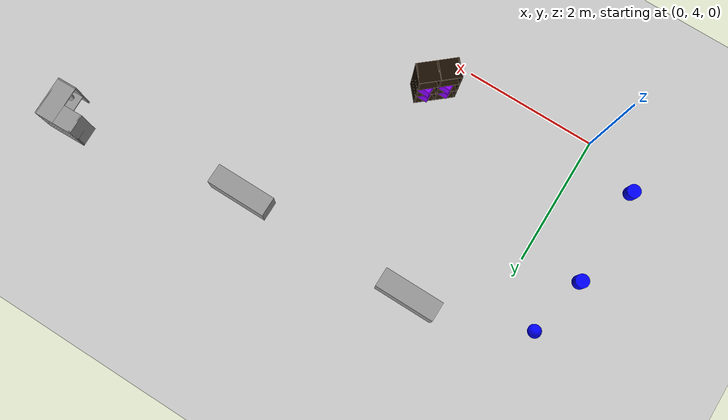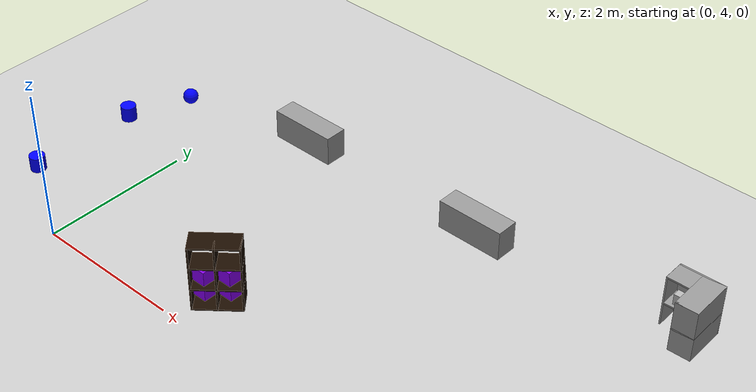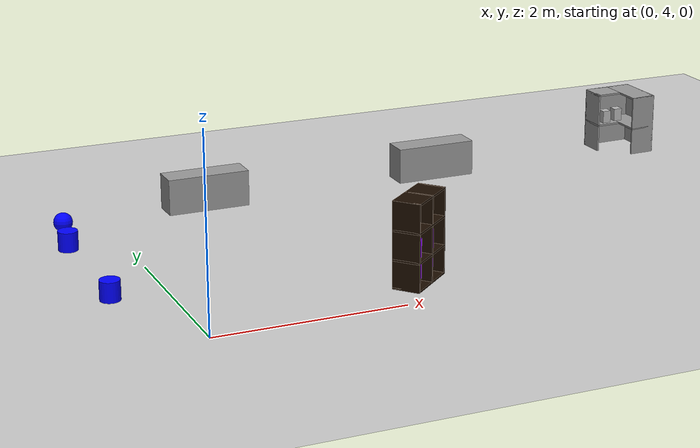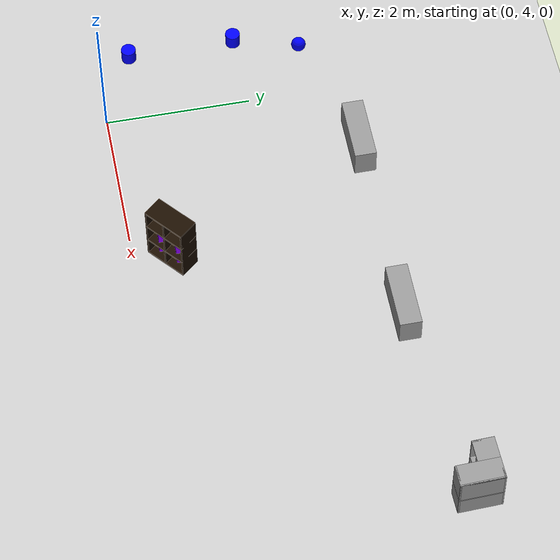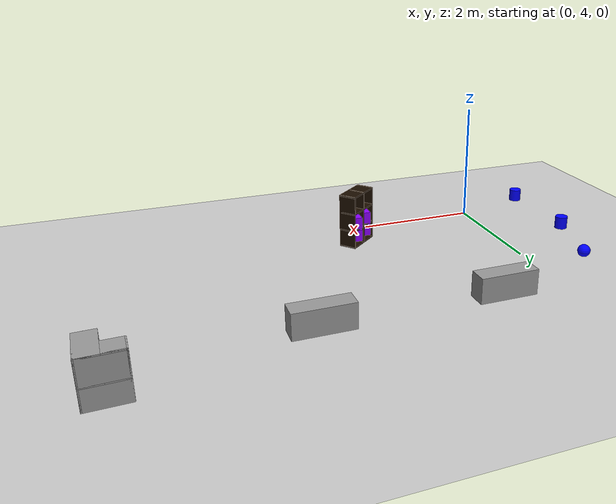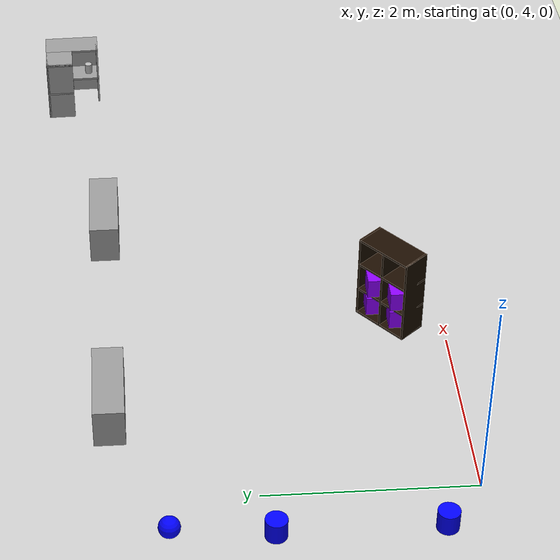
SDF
<sdf version="1.7">
 <world name="default">
  <model name="ground_plane">
   <static>1</static>
   <link name="link">
    <collision name="collision">
     <geometry><plane><normal>0 0 1</normal><size>100 100</size></plane></geometry>
     <surface>
      <contact><collide_bitmask>65535</collide_bitmask></contact>
      <friction><ode><mu>100</mu><mu2>50</mu2></ode></friction>
     </surface>
    </collision>
    <visual name="visual">
     <cast_shadows>0</cast_shadows>
     <geometry><plane><normal>0 0 1</normal><size>100 100</size></plane></geometry>
     <material>
      <script><uri>file://media/materials/scripts/gazebo.material</uri><name>Gazebo/Grey</name></script>
     </material>
    </visual>
   </link>
  </model>
  <model name="Wall_Cabinet_Coin_24x30W">
   <link name="Wall_10">
    <pose>0.286 -0.148 0.384 0 -0 0</pose>
    <inertial>
     <mass>2.1259</mass>
     <inertia><ixx>0.0158</ixx><iyy>0.1202</iyy><izz>0.1046</izz><ixy>0</ixy><ixz>0</ixz><iyz>0</iyz></inertia>
    </inertial>
    <collision name="Wall_10_Collision"><geometry><box><size>0.02 0.296 0.768</size></box></geometry></collision>
    <visual name="Wall_10_Visual">
     <geometry><box><size>0.02 0.296 0.768</size></box></geometry>
     <material>
      <script><uri>file://media/materials/scripts/gazebo.material</uri><name>Gazebo/Grey</name></script>
      <ambient>1 1 1 1</ambient>
     </material>
    </visual>
   </link>
   <joint name="10_16" type="fixed">
    <pose>0 0 -0.374 0 -0 0</pose>
    <parent>Wall_16</parent>
    <child>Wall_10</child>
    <axis><xyz>1 0 0</xyz><limit><lower>-1e+16</lower><upper>1e+16</upper></limit></axis>
   </joint>
   <joint name="10_14" type="fixed">
    <parent>Wall_14</parent>
    <child>Wall_10</child>
    <axis><xyz>1 0 0</xyz><limit><lower>-1e+16</lower><upper>1e+16</upper></limit></axis>
   </joint>
   <joint name="10_12" type="fixed">
    <pose>0 0 0.374 0 -0 0</pose>
    <parent>Wall_12</parent>
    <child>Wall_10</child>
    <axis><xyz>1 0 0</xyz><limit><lower>-1e+16</lower><upper>1e+16</upper></limit></axis>
   </joint>
   <joint name="10_29" type="fixed">
    <pose>0 -0.148 0 0 -0 0</pose>
    <parent>Wall_29</parent>
    <child>Wall_10</child>
    <axis><xyz>1 0 0</xyz><limit><lower>-1e+16</lower><upper>1e+16</upper></limit></axis>
   </joint>
   <link name="Wall_12">
    <pose>0.148 -0.148 0.758 0 -0 0</pose>
    <inertial>
     <mass>0.8802</mass>
     <inertia><ixx>0.0065</ixx><iyy>0.0139</iyy><izz>0.0074</izz><ixy>0</ixy><ixz>0</ixz><iyz>0</iyz></inertia>
    </inertial>
    <collision name="Wall_12_Collision"><geometry><box><size>0.296 0.296 0.02</size></box></geometry></collision>
    <visual name="Wall_12_Visual">
     <geometry><box><size>0.296 0.296 0.02</size></box></geometry>
     <material>
      <script><uri>file://media/materials/scripts/gazebo.material</uri><name>Gazebo/Grey</name></script>
      <ambient>1 1 1 1</ambient>
     </material>
    </visual>
   </link>
   <joint name="12_29" type="fixed">
    <pose>0 -0.148 0 0 -0 0</pose>
    <parent>Wall_29</parent>
    <child>Wall_12</child>
    <axis><xyz>0 0 1</xyz><limit><lower>-1e+16</lower><upper>1e+16</upper></limit></axis>
   </joint>
   <link name="Wall_14">
    <pose>0.148 -0.148 0.384 0 -0 0</pose>
    <inertial>
     <mass>0.8802</mass>
     <inertia><ixx>0.0065</ixx><iyy>0.0139</iyy><izz>0.0074</izz><ixy>0</ixy><ixz>0</ixz><iyz>0</iyz></inertia>
    </inertial>
    <collision name="Wall_14_Collision"><geometry><box><size>0.296 0.296 0.02</size></box></geometry></collision>
    <visual name="Wall_14_Visual">
     <geometry><box><size>0.296 0.296 0.02</size></box></geometry>
     <material>
      <script><uri>file://media/materials/scripts/gazebo.material</uri><name>Gazebo/Grey</name></script>
      <ambient>1 1 1 1</ambient>
     </material>
    </visual>
   </link>
   <joint name="14_29" type="fixed">
    <pose>0 -0.148 0 0 -0 0</pose>
    <parent>Wall_29</parent>
    <child>Wall_14</child>
    <axis><xyz>0 1 0</xyz><limit><lower>-1e+16</lower><upper>1e+16</upper></limit></axis>
   </joint>
   <link name="Wall_16">
    <pose>0.148 -0.148 0.01 0 -0 0</pose>
    <inertial>
     <mass>0.8802</mass>
     <inertia><ixx>0.0065</ixx><iyy>0.0139</iyy><izz>0.0074</izz><ixy>0</ixy><ixz>0</ixz><iyz>0</iyz></inertia>
    </inertial>
    <collision name="Wall_16_Collision"><geometry><box><size>0.296 0.296 0.02</size></box></geometry></collision>
    <visual name="Wall_16_Visual">
     <geometry><box><size>0.296 0.296 0.02</size></box></geometry>
     <material>
      <script><uri>file://media/materials/scripts/gazebo.material</uri><name>Gazebo/Grey</name></script>
      <ambient>1 1 1 1</ambient>
     </material>
    </visual>
   </link>
   <joint name="16_29" type="fixed">
    <pose>0 -0.148 0 0 -0 0</pose>
    <parent>Wall_29</parent>
    <child>Wall_16</child>
    <axis><xyz>0 1 0</xyz><limit><lower>-1e+16</lower><upper>1e+16</upper></limit></axis>
   </joint>
   <link name="Wall_18">
    <pose>-0.148 0 0.01 0 -0 0</pose>
    <inertial>
     <mass>1.6525</mass>
     <inertia><ixx>0.0491</ixx><iyy>0.0613</iyy><izz>0.0123</izz><ixy>0</ixy><ixz>0</ixz><iyz>0</iyz></inertia>
    </inertial>
    <collision name="Wall_18_Collision"><geometry><box><size>0.296 0.592 0.02</size></box></geometry></collision>
    <visual name="Wall_18_Visual">
     <geometry><box><size>0.296 0.592 0.02</size></box></geometry>
     <material>
      <script><uri>file://media/materials/scripts/gazebo.material</uri><name>Gazebo/Grey</name></script>
      <ambient>1 1 1 1</ambient>
     </material>
    </visual>
   </link>
   <joint name="18_16" type="fixed">
    <pose>0.148 -0.148 0 0 -0 0</pose>
    <parent>Wall_16</parent>
    <child>Wall_18</child>
    <axis><xyz>1 0 0</xyz><limit><lower>-1e+16</lower><upper>1e+16</upper></limit></axis>
   </joint>
   <joint name="18_29" type="fixed">
    <pose>0 -0.296 0 0 -0 0</pose>
    <parent>Wall_29</parent>
    <child>Wall_18</child>
    <axis><xyz>0 1 0</xyz><limit><lower>-1e+16</lower><upper>1e+16</upper></limit></axis>
   </joint>
   <joint name="18_27" type="fixed">
    <pose>-0.148 0 0 0 -0 0</pose>
    <parent>Wall_27</parent>
    <child>Wall_18</child>
    <axis><xyz>1 0 0</xyz><limit><lower>-1e+16</lower><upper>1e+16</upper></limit></axis>
   </joint>
   <joint name="18_30" type="fixed">
    <pose>0 0.296 0 0 -0 0</pose>
    <parent>Wall_30</parent>
    <child>Wall_18</child>
    <axis><xyz>0 1 0</xyz><limit><lower>-1e+16</lower><upper>1e+16</upper></limit></axis>
   </joint>
   <link name="Wall_20">
    <pose>-0.148 0 0.384 0 -0 0</pose>
    <inertial>
     <mass>1.6525</mass>
     <inertia><ixx>0.0491</ixx><iyy>0.0613</iyy><izz>0.0123</izz><ixy>0</ixy><ixz>0</ixz><iyz>0</iyz></inertia>
    </inertial>
    <collision name="Wall_20_Collision"><geometry><box><size>0.296 0.592 0.02</size></box></geometry></collision>
    <visual name="Wall_20_Visual">
     <geometry><box><size>0.296 0.592 0.02</size></box></geometry>
     <material>
      <script><uri>file://media/materials/scripts/gazebo.material</uri><name>Gazebo/Grey</name></script>
      <ambient>1 1 1 1</ambient>
     </material>
    </visual>
   </link>
   <joint name="20_14" type="fixed">
    <pose>0.148 -0.148 0 0 -0 0</pose>
    <parent>Wall_14</parent>
    <child>Wall_20</child>
    <axis><xyz>1 0 0</xyz><limit><lower>-1e+16</lower><upper>1e+16</upper></limit></axis>
   </joint>
   <joint name="20_29" type="fixed">
    <pose>0 -0.296 0 0 -0 0</pose>
    <parent>Wall_29</parent>
    <child>Wall_20</child>
    <axis><xyz>0 1 0</xyz><limit><lower>-1e+16</lower><upper>1e+16</upper></limit></axis>
   </joint>
   <joint name="20_27" type="fixed">
    <pose>-0.148 0 0 0 -0 0</pose>
    <parent>Wall_27</parent>
    <child>Wall_20</child>
    <axis><xyz>1 0 0</xyz><limit><lower>-1e+16</lower><upper>1e+16</upper></limit></axis>
   </joint>
   <joint name="20_30" type="fixed">
    <pose>0 0.296 0 0 -0 0</pose>
    <parent>Wall_30</parent>
    <child>Wall_20</child>
    <axis><xyz>0 1 0</xyz><limit><lower>-1e+16</lower><upper>1e+16</upper></limit></axis>
   </joint>
   <link name="Wall_22">
    <pose>-0.148 0 0.758 0 -0 0</pose>
    <inertial>
     <mass>1.6525</mass>
     <inertia><ixx>0.0491</ixx><iyy>0.0613</iyy><izz>0.0123</izz><ixy>0</ixy><ixz>0</ixz><iyz>0</iyz></inertia>
    </inertial>
    <collision name="Wall_22_Collision"><geometry><box><size>0.296 0.592 0.02</size></box></geometry></collision>
    <visual name="Wall_22_Visual">
     <geometry><box><size>0.296 0.592 0.02</size></box></geometry>
     <material>
      <script><uri>file://media/materials/scripts/gazebo.material</uri><name>Gazebo/Grey</name></script>
      <ambient>1 1 1 1</ambient>
     </material>
    </visual>
   </link>
   <joint name="22_12" type="fixed">
    <pose>0.148 -0.148 0 0 -0 0</pose>
    <parent>Wall_12</parent>
    <child>Wall_22</child>
    <axis><xyz>1 0 0</xyz><limit><lower>-1e+16</lower><upper>1e+16</upper></limit></axis>
   </joint>
   <joint name="22_29" type="fixed">
    <pose>0 -0.296 0 0 -0 0</pose>
    <parent>Wall_29</parent>
    <child>Wall_22</child>
    <axis><xyz>0 1 0</xyz><limit><lower>-1e+16</lower><upper>1e+16</upper></limit></axis>
   </joint>
   <joint name="22_27" type="fixed">
    <pose>-0.148 0 0 0 -0 0</pose>
    <parent>Wall_27</parent>
    <child>Wall_22</child>
    <axis><xyz>1 0 0</xyz><limit><lower>-1e+16</lower><upper>1e+16</upper></limit></axis>
   </joint>
   <joint name="22_30" type="fixed">
    <pose>0 0.296 0 0 -0 0</pose>
    <parent>Wall_30</parent>
    <child>Wall_22</child>
    <axis><xyz>0 1 0</xyz><limit><lower>-1e+16</lower><upper>1e+16</upper></limit></axis>
   </joint>
   <link name="Wall_27">
    <pose>-0.286 0 0.384 0 -0 0</pose>
    <inertial>
     <mass>4.2589</mass>
     <inertia><ixx>0.1266</ixx><iyy>0.3358</iyy><izz>0.2095</izz><ixy>0</ixy><ixz>0</ixz><iyz>0</iyz></inertia>
    </inertial>
    <collision name="Wall_27_Collision"><geometry><box><size>0.02 0.592 0.768</size></box></geometry></collision>
    <visual name="Wall_27_Visual">
     <geometry><box><size>0.02 0.592 0.768</size></box></geometry>
     <material>
      <script><uri>file://media/materials/scripts/gazebo.material</uri><name>Gazebo/Grey</name></script>
      <ambient>1 1 1 1</ambient>
     </material>
    </visual>
   </link>
   <joint name="27_30" type="fixed">
    <pose>0 0.296 0 0 -0 0</pose>
    <parent>Wall_30</parent>
    <child>Wall_27</child>
    <axis><xyz>0 1 0</xyz><limit><lower>-1e+16</lower><upper>1e+16</upper></limit></axis>
   </joint>
   <link name="Wall_29">
    <pose>0 -0.286 0.384 0 -0 0</pose>
    <inertial>
     <mass>4.3176</mass>
     <inertia><ixx>0.134</ixx><iyy>0.2091</iyy><izz>0.3428</izz><ixy>0</ixy><ixz>0</ixz><iyz>0</iyz></inertia>
    </inertial>
    <collision name="Wall_29_Collision"><geometry><box><size>0.592 0.02 0.768</size></box></geometry></collision>
    <visual name="Wall_29_Visual">
     <geometry><box><size>0.592 0.02 0.768</size></box></geometry>
     <material>
      <script><uri>file://media/materials/scripts/gazebo.material</uri><name>Gazebo/Grey</name></script>
      <ambient>1 1 1 1</ambient>
     </material>
    </visual>
   </link>
   <link name="Wall_30">
    <pose>-0.148 0.286 0.384 0 -0 0</pose>
    <inertial>
     <mass>2.1093</mass>
     <inertia><ixx>0.1021</ixx><iyy>0.0157</iyy><izz>0.1177</izz><ixy>0</ixy><ixz>0</ixz><iyz>0</iyz></inertia>
    </inertial>
    <collision name="Wall_30_Collision"><geometry><box><size>0.296 0.02 0.768</size></box></geometry></collision>
    <visual name="Wall_30_Visual">
     <geometry><box><size>0.296 0.02 0.768</size></box></geometry>
     <material>
      <script><uri>file://media/materials/scripts/gazebo.material</uri><name>Gazebo/Grey</name></script>
      <ambient>1 1 1 1</ambient>
     </material>
    </visual>
   </link>
   <static>1</static>
   <pose>6.53795 7.67148 -0.076235 0 0 -3.11243</pose>
  </model>
  <model name="tea_box">
   <link name="link">
    <pose>0 0 0.075 0 -0 0</pose>
    <visual name="visual">
     <geometry><box><size>0.1 0.1 0.15</size></box></geometry>
     <material>
      <script>
       <uri>model://tea_box/materials/scripts</uri>
       <uri>model://tea_box/materials/textures</uri>
       <name>tea_pat</name>
      </script>
     </material>
    </visual>
    <collision name="collision"><geometry><box><size>0.1 0.1 0.15</size></box></geometry></collision>
   </link>
   <static>1</static>
   <pose>6.3937 7.76277 0.31356 0 -0 0</pose>
  </model>
  <model name="tea_box_clone">
   <link name="link">
    <pose>0 0 0.075 0 -0 0</pose>
    <visual name="visual">
     <geometry><box><size>0.1 0.1 0.15</size></box></geometry>
     <material>
      <script>
       <uri>model://tea_box/materials/scripts</uri>
       <uri>model://tea_box/materials/textures</uri>
       <name>tea_pat</name>
      </script>
     </material>
    </visual>
    <collision name="collision"><geometry><box><size>0.1 0.1 0.15</size></box></geometry></collision>
   </link>
   <static>1</static>
   <pose>6.56471 7.79411 0.314783 0 -0 0</pose>
  </model>
  <model name="coffee_box">
   <link name="link_0">
    <visual name="visual">
     <pose>0 0 0.06 0 -0 0</pose>
     <geometry><cylinder><radius>0.04</radius><length>0.12</length></cylinder></geometry>
     <material>
      <script>
       <uri>model://coffee_box/materials/scripts</uri>
       <uri>model://coffee_box/materials/textures</uri>
       <name>coffee_pat</name>
      </script>
     </material>
    </visual>
    <collision name="collision">
     <geometry><cylinder><radius>0.04</radius><length>0.12</length></cylinder></geometry>
    </collision>
   </link>
   <static>1</static>
   <pose>6.67443 7.49279 0.308834 0 -0 0</pose>
  </model>
  <model name="cylinder_b">
   <link name="link_0">
    <pose>0 0 0.1 0 -0 0</pose>
    <inertial>
     <mass>1</mass>
     <inertia><ixx>0.145833</ixx><ixy>0</ixy><ixz>0</ixz><iyy>0.145833</iyy><iyz>0</iyz><izz>0.125</izz></inertia>
    </inertial>
    <visual name="visual">
     <geometry><cylinder><radius>0.1</radius><length>0.2</length></cylinder></geometry>
     <material>
      <lighting>1</lighting>
      <script><uri>file://media/materials/scripts/gazebo.material</uri><name>Gazebo/Grey</name></script>
      <ambient>0 0 1 1</ambient>
      <diffuse>0 0 1 1</diffuse>
      <specular>0 0 0 1</specular>
      <emissive>0 0 0 1</emissive>
      <shader type="vertex"><normal_map>__default__</normal_map></shader>
     </material>
    </visual>
    <collision name="collision">
     <geometry><cylinder><radius>0.1</radius><length>0.2</length></cylinder></geometry>
     <surface>
      <friction>
       <ode><mu>1</mu><mu2>1</mu2><fdir1>0 0 0</fdir1><slip1>0</slip1><slip2>0</slip2></ode>
       <torsional>
        <coefficient>1</coefficient>
        <patch_radius>0</patch_radius>
        <surface_radius>0</surface_radius>
        <use_patch_radius>1</use_patch_radius>
        <ode><slip>0</slip></ode>
       </torsional>
      </friction>
      <bounce><restitution_coefficient>0</restitution_coefficient><threshold>1e+06</threshold></bounce>
      <contact>
       <collide_without_contact>0</collide_without_contact>
       <collide_without_contact_bitmask>1</collide_without_contact_bitmask>
       <collide_bitmask>1</collide_bitmask>
       <ode>
        <soft_cfm>0</soft_cfm>
        <soft_erp>0.2</soft_erp>
        <kp>1e+13</kp>
        <kd>1</kd>
        <max_vel>0.01</max_vel>
        <min_depth>0</min_depth>
       </ode>
       <bullet>
        <split_impulse>1</split_impulse>
        <split_impulse_penetration_threshold>-0.01</split_impulse_penetration_threshold>
        <soft_cfm>0</soft_cfm>
        <soft_erp>0.2</soft_erp>
        <kp>1e+13</kp>
        <kd>1</kd>
       </bullet>
      </contact>
     </surface>
    </collision>
   </link>
   <static>1</static>
   <pose>-0.792536 4.45575 0.336104 0 -0 0</pose>
  </model>
  <model name="cylinder_b_0">
   <link name="link_0">
    <pose>0 0 0.1 0 -0 0</pose>
    <inertial>
     <mass>1</mass>
     <inertia><ixx>0.145833</ixx><ixy>0</ixy><ixz>0</ixz><iyy>0.145833</iyy><iyz>0</iyz><izz>0.125</izz></inertia>
    </inertial>
    <visual name="visual">
     <geometry><cylinder><radius>0.1</radius><length>0.2</length></cylinder></geometry>
     <material>
      <lighting>1</lighting>
      <script><uri>file://media/materials/scripts/gazebo.material</uri><name>Gazebo/Grey</name></script>
      <ambient>0 0 1 1</ambient>
      <diffuse>0 0 1 1</diffuse>
      <specular>0 0 0 1</specular>
      <emissive>0 0 0 1</emissive>
      <shader type="vertex"><normal_map>__default__</normal_map></shader>
     </material>
    </visual>
    <collision name="collision">
     <geometry><cylinder><radius>0.1</radius><length>0.2</length></cylinder></geometry>
     <surface>
      <friction>
       <ode><mu>1</mu><mu2>1</mu2><fdir1>0 0 0</fdir1><slip1>0</slip1><slip2>0</slip2></ode>
       <torsional>
        <coefficient>1</coefficient>
        <patch_radius>0</patch_radius>
        <surface_radius>0</surface_radius>
        <use_patch_radius>1</use_patch_radius>
        <ode><slip>0</slip></ode>
       </torsional>
      </friction>
      <bounce><restitution_coefficient>0</restitution_coefficient><threshold>1e+06</threshold></bounce>
      <contact>
       <collide_without_contact>0</collide_without_contact>
       <collide_without_contact_bitmask>1</collide_without_contact_bitmask>
       <collide_bitmask>1</collide_bitmask>
       <ode>
        <soft_cfm>0</soft_cfm>
        <soft_erp>0.2</soft_erp>
        <kp>1e+13</kp>
        <kd>1</kd>
        <max_vel>0.01</max_vel>
        <min_depth>0</min_depth>
       </ode>
       <bullet>
        <split_impulse>1</split_impulse>
        <split_impulse_penetration_threshold>-0.01</split_impulse_penetration_threshold>
        <soft_cfm>0</soft_cfm>
        <soft_erp>0.2</soft_erp>
        <kp>1e+13</kp>
        <kd>1</kd>
       </bullet>
      </contact>
     </surface>
    </collision>
   </link>
   <static>1</static>
   <pose>-0.793247 5.92319 0.334022 0 -0 0</pose>
  </model>
  <model name="sphere_b">
   <link name="link_1">
    <pose>0 0 0.1 0 -0 0</pose>
    <inertial>
     <mass>1</mass>
     <inertia><ixx>0.1</ixx><ixy>0</ixy><ixz>0</ixz><iyy>0.1</iyy><iyz>0</iyz><izz>0.1</izz></inertia>
    </inertial>
    <visual name="visual">
     <geometry><sphere><radius>0.1</radius></sphere></geometry>
     <material>
      <lighting>1</lighting>
      <script><uri>file://media/materials/scripts/gazebo.material</uri><name>Gazebo/Grey</name></script>
      <ambient>0 0 1 1</ambient>
      <diffuse>0 0 1 1</diffuse>
      <specular>0 0 0 1</specular>
      <emissive>0 0 0 1</emissive>
      <shader type="vertex"><normal_map>__default__</normal_map></shader>
     </material>
    </visual>
    <collision name="collision">
     <geometry><sphere><radius>0.1</radius></sphere></geometry>
     <surface>
      <friction>
       <ode><mu>1</mu><mu2>1</mu2><fdir1>0 0 0</fdir1><slip1>0</slip1><slip2>0</slip2></ode>
       <torsional>
        <coefficient>1</coefficient>
        <patch_radius>0</patch_radius>
        <surface_radius>0</surface_radius>
        <use_patch_radius>1</use_patch_radius>
        <ode><slip>0</slip></ode>
       </torsional>
      </friction>
      <bounce><restitution_coefficient>0</restitution_coefficient><threshold>1e+06</threshold></bounce>
      <contact>
       <collide_without_contact>0</collide_without_contact>
       <collide_without_contact_bitmask>1</collide_without_contact_bitmask>
       <collide_bitmask>1</collide_bitmask>
       <ode>
        <soft_cfm>0</soft_cfm>
        <soft_erp>0.2</soft_erp>
        <kp>1e+13</kp>
        <kd>1</kd>
        <max_vel>0.01</max_vel>
        <min_depth>0</min_depth>
       </ode>
       <bullet>
        <split_impulse>1</split_impulse>
        <split_impulse_penetration_threshold>-0.01</split_impulse_penetration_threshold>
        <soft_cfm>0</soft_cfm>
        <soft_erp>0.2</soft_erp>
        <kp>1e+13</kp>
        <kd>1</kd>
       </bullet>
      </contact>
     </surface>
    </collision>
   </link>
   <static>1</static>
   <pose>-0.612109 6.82404 0.208521 0 -0 0</pose>
  </model>
  <model name="6_Cube_StorageE">
   <link name="Wall_0">
    <pose>0 0 0.01 0 -0 0</pose>
    <inertial>
     <mass>1.6201</mass>
     <inertia><ixx>0.0119</ixx><iyy>0.0631</iyy><izz>0.0513</izz><ixy>0</ixy><ixz>0</ixz><iyz>0</iyz></inertia>
    </inertial>
    <collision name="Wall_0_Collision"><geometry><box><size>0.616 0.296 0.02</size></box></geometry></collision>
    <visual name="Wall_0_Visual">
     <geometry><box><size>0.616 0.296 0.02</size></box></geometry>
     <material>
      <script><uri>file://media/materials/scripts/gazebo.material</uri><name>Gazebo/Grey</name></script>
      <ambient>0.105882 0.0509804 0 1</ambient>
     </material>
    </visual>
   </link>
   <joint name="0_2" type="fixed">
    <pose>-0.308 0 0 0 -0 0</pose>
    <parent>Wall_2</parent>
    <child>Wall_0</child>
    <axis><xyz>1 0 0</xyz><limit><lower>-1e+16</lower><upper>1e+16</upper></limit></axis>
   </joint>
   <joint name="0_12" type="fixed">
    <parent>Wall_12</parent>
    <child>Wall_0</child>
    <axis><xyz>0 0 1</xyz><limit><lower>-1e+16</lower><upper>1e+16</upper></limit></axis>
   </joint>
   <joint name="0_4" type="fixed">
    <pose>0.308 0 0 0 -0 0</pose>
    <parent>Wall_4</parent>
    <child>Wall_0</child>
    <axis><xyz>1 0 0</xyz><limit><lower>-1e+16</lower><upper>1e+16</upper></limit></axis>
   </joint>
   <link name="Wall_10">
    <pose>0 0 0.61 0 -0 0</pose>
    <inertial>
     <mass>1.6201</mass>
     <inertia><ixx>0.0119</ixx><iyy>0.0631</iyy><izz>0.0513</izz><ixy>0</ixy><ixz>0</ixz><iyz>0</iyz></inertia>
    </inertial>
    <collision name="Wall_10_Collision"><geometry><box><size>0.616 0.296 0.02</size></box></geometry></collision>
    <visual name="Wall_10_Visual">
     <geometry><box><size>0.616 0.296 0.02</size></box></geometry>
     <material>
      <script><uri>file://media/materials/scripts/gazebo.material</uri><name>Gazebo/Grey</name></script>
      <ambient>0.105882 0.0509804 0 1</ambient>
     </material>
    </visual>
   </link>
   <joint name="10_2" type="fixed">
    <pose>-0.308 0 0 0 -0 0</pose>
    <parent>Wall_2</parent>
    <child>Wall_10</child>
    <axis><xyz>1 0 0</xyz><limit><lower>-1e+16</lower><upper>1e+16</upper></limit></axis>
   </joint>
   <joint name="10_12" type="fixed">
    <parent>Wall_12</parent>
    <child>Wall_10</child>
    <axis><xyz>0 0 1</xyz><limit><lower>-1e+16</lower><upper>1e+16</upper></limit></axis>
   </joint>
   <joint name="10_4" type="fixed">
    <pose>0.308 0 0 0 -0 0</pose>
    <parent>Wall_4</parent>
    <child>Wall_10</child>
    <axis><xyz>1 0 0</xyz><limit><lower>-1e+16</lower><upper>1e+16</upper></limit></axis>
   </joint>
   <link name="Wall_12">
    <pose>0 0 0.4575 0 -0 0</pose>
    <inertial>
     <mass>2.4065</mass>
     <inertia><ixx>0.0177</ixx><iyy>0.1855</iyy><izz>0.168</izz><ixy>0</ixy><ixz>0</ixz><iyz>0</iyz></inertia>
    </inertial>
    <collision name="Wall_12_Collision"><geometry><box><size>0.02 0.296 0.915</size></box></geometry></collision>
    <visual name="Wall_12_Visual">
     <geometry><box><size>0.02 0.296 0.915</size></box></geometry>
     <material>
      <script><uri>file://media/materials/scripts/gazebo.material</uri><name>Gazebo/Grey</name></script>
      <ambient>0.105882 0.0509804 0 1</ambient>
     </material>
    </visual>
   </link>
   <link name="Wall_2">
    <pose>-0.298 0 0.4575 0 -0 0</pose>
    <inertial>
     <mass>2.4065</mass>
     <inertia><ixx>0.0177</ixx><iyy>0.1855</iyy><izz>0.168</izz><ixy>0</ixy><ixz>0</ixz><iyz>0</iyz></inertia>
    </inertial>
    <collision name="Wall_2_Collision"><geometry><box><size>0.02 0.296 0.915</size></box></geometry></collision>
    <visual name="Wall_2_Visual">
     <geometry><box><size>0.02 0.296 0.915</size></box></geometry>
     <material>
      <script><uri>file://media/materials/scripts/gazebo.material</uri><name>Gazebo/Grey</name></script>
      <ambient>0.105882 0.0509804 0 1</ambient>
     </material>
    </visual>
   </link>
   <link name="Wall_4">
    <pose>0.298 0 0.4575 0 -0 0</pose>
    <inertial>
     <mass>2.4065</mass>
     <inertia><ixx>0.0177</ixx><iyy>0.1855</iyy><izz>0.168</izz><ixy>0</ixy><ixz>0</ixz><iyz>0</iyz></inertia>
    </inertial>
    <collision name="Wall_4_Collision"><geometry><box><size>0.02 0.296 0.915</size></box></geometry></collision>
    <visual name="Wall_4_Visual">
     <geometry><box><size>0.02 0.296 0.915</size></box></geometry>
     <material>
      <script><uri>file://media/materials/scripts/gazebo.material</uri><name>Gazebo/Grey</name></script>
      <ambient>0.105882 0.0509804 0 1</ambient>
     </material>
    </visual>
   </link>
   <link name="Wall_6">
    <pose>0 0 0.905 0 -0 0</pose>
    <inertial>
     <mass>1.6201</mass>
     <inertia><ixx>0.0119</ixx><iyy>0.0631</iyy><izz>0.0513</izz><ixy>0</ixy><ixz>0</ixz><iyz>0</iyz></inertia>
    </inertial>
    <collision name="Wall_6_Collision"><geometry><box><size>0.616 0.296 0.02</size></box></geometry></collision>
    <visual name="Wall_6_Visual">
     <geometry><box><size>0.616 0.296 0.02</size></box></geometry>
     <material>
      <script><uri>file://media/materials/scripts/gazebo.material</uri><name>Gazebo/Grey</name></script>
      <ambient>0.105882 0.0509804 0 1</ambient>
     </material>
    </visual>
   </link>
   <joint name="6_2" type="fixed">
    <pose>-0.308 0 0 0 -0 0</pose>
    <parent>Wall_2</parent>
    <child>Wall_6</child>
    <axis><xyz>2 0 0</xyz><limit><lower>-1e+16</lower><upper>1e+16</upper></limit></axis>
   </joint>
   <joint name="6_12" type="fixed">
    <parent>Wall_12</parent>
    <child>Wall_6</child>
    <axis><xyz>0 0 1</xyz><limit><lower>-1e+16</lower><upper>1e+16</upper></limit></axis>
   </joint>
   <joint name="6_4" type="fixed">
    <pose>0.308 0 0 0 -0 0</pose>
    <parent>Wall_4</parent>
    <child>Wall_6</child>
    <axis><xyz>1 0 0</xyz><limit><lower>-1e+16</lower><upper>1e+16</upper></limit></axis>
   </joint>
   <link name="Wall_8">
    <pose>0 0 0.305 0 -0 0</pose>
    <inertial>
     <mass>1.6201</mass>
     <inertia><ixx>0.0119</ixx><iyy>0.0631</iyy><izz>0.0513</izz><ixy>0</ixy><ixz>0</ixz><iyz>0</iyz></inertia>
    </inertial>
    <collision name="Wall_8_Collision"><geometry><box><size>0.616 0.296 0.02</size></box></geometry></collision>
    <visual name="Wall_8_Visual">
     <geometry><box><size>0.616 0.296 0.02</size></box></geometry>
     <material>
      <script><uri>file://media/materials/scripts/gazebo.material</uri><name>Gazebo/Grey</name></script>
      <ambient>0.105882 0.0509804 0 1</ambient>
     </material>
    </visual>
   </link>
   <joint name="8_2" type="fixed">
    <pose>-0.308 0 0 0 -0 0</pose>
    <parent>Wall_2</parent>
    <child>Wall_8</child>
    <axis><xyz>1 0 0</xyz><limit><lower>-1e+16</lower><upper>1e+16</upper></limit></axis>
   </joint>
   <joint name="8_12" type="fixed">
    <parent>Wall_12</parent>
    <child>Wall_8</child>
    <axis><xyz>0 0 1</xyz><limit><lower>-1e+16</lower><upper>1e+16</upper></limit></axis>
   </joint>
   <joint name="8_4" type="fixed">
    <pose>0.308 0 0 0 -0 0</pose>
    <parent>Wall_4</parent>
    <child>Wall_8</child>
    <axis><xyz>1 0 0</xyz><limit><lower>-1e+16</lower><upper>1e+16</upper></limit></axis>
   </joint>
   <static>1</static>
   <pose>2.36263 4.52683 -0 0 -0 0.709562</pose>
  </model>
  <model name="cube_vb">
   <link name="link_2">
    <pose>0 0 0.1 0 -0 0</pose>
    <inertial>
     <mass>1</mass>
     <inertia>
      <ixx>0.166667</ixx>
      <ixy>0</ixy>
      <ixz>0</ixz>
      <iyy>0.166667</iyy>
      <iyz>0</iyz>
      <izz>0.166667</izz>
     </inertia>
    </inertial>
    <visual name="visual">
     <geometry><box><size>0.2 0.2 0.2</size></box></geometry>
     <material>
      <lighting>1</lighting>
      <script><uri>file://media/materials/scripts/gazebo.material</uri><name>Gazebo/Grey</name></script>
      <ambient>0.549 0 1 1</ambient>
      <diffuse>0.549 0 1 1</diffuse>
      <specular>0 0 0 1</specular>
      <emissive>0 0 0 1</emissive>
      <shader type="vertex"><normal_map>__default__</normal_map></shader>
     </material>
    </visual>
    <collision name="collision">
     <geometry><box><size>0.2 0.2 0.2</size></box></geometry>
     <surface>
      <friction>
       <ode><mu>1</mu><mu2>1</mu2><fdir1>0 0 0</fdir1><slip1>0</slip1><slip2>0</slip2></ode>
       <torsional>
        <coefficient>1</coefficient>
        <patch_radius>0</patch_radius>
        <surface_radius>0</surface_radius>
        <use_patch_radius>1</use_patch_radius>
        <ode><slip>0</slip></ode>
       </torsional>
      </friction>
      <bounce><restitution_coefficient>0</restitution_coefficient><threshold>1e+06</threshold></bounce>
      <contact>
       <collide_without_contact>0</collide_without_contact>
       <collide_without_contact_bitmask>1</collide_without_contact_bitmask>
       <collide_bitmask>1</collide_bitmask>
       <ode>
        <soft_cfm>0</soft_cfm>
        <soft_erp>0.2</soft_erp>
        <kp>1e+13</kp>
        <kd>1</kd>
        <max_vel>0.01</max_vel>
        <min_depth>0</min_depth>
       </ode>
       <bullet>
        <split_impulse>1</split_impulse>
        <split_impulse_penetration_threshold>-0.01</split_impulse_penetration_threshold>
        <soft_cfm>0</soft_cfm>
        <soft_erp>0.2</soft_erp>
        <kp>1e+13</kp>
        <kd>1</kd>
       </bullet>
      </contact>
     </surface>
    </collision>
   </link>
   <static>1</static>
   <pose>2.21691 4.46057 0.312646 0 -0 0</pose>
  </model>
  <model name="cube_vb_clone">
   <link name="link_2">
    <pose>0 0 0.1 0 -0 0</pose>
    <inertial>
     <mass>1</mass>
     <inertia>
      <ixx>0.166667</ixx>
      <ixy>0</ixy>
      <ixz>0</ixz>
      <iyy>0.166667</iyy>
      <iyz>0</iyz>
      <izz>0.166667</izz>
     </inertia>
    </inertial>
    <visual name="visual">
     <geometry><box><size>0.2 0.2 0.2</size></box></geometry>
     <material>
      <lighting>1</lighting>
      <script><uri>file://media/materials/scripts/gazebo.material</uri><name>Gazebo/Grey</name></script>
      <ambient>0.549 0 1 1</ambient>
      <diffuse>0.549 0 1 1</diffuse>
      <specular>0 0 0 1</specular>
      <emissive>0 0 0 1</emissive>
      <shader type="vertex"><normal_map>__default__</normal_map></shader>
     </material>
    </visual>
    <collision name="collision">
     <geometry><box><size>0.2 0.2 0.2</size></box></geometry>
     <surface>
      <friction>
       <ode><mu>1</mu><mu2>1</mu2><fdir1>0 0 0</fdir1><slip1>0</slip1><slip2>0</slip2></ode>
       <torsional>
        <coefficient>1</coefficient>
        <patch_radius>0</patch_radius>
        <surface_radius>0</surface_radius>
        <use_patch_radius>1</use_patch_radius>
        <ode><slip>0</slip></ode>
       </torsional>
      </friction>
      <bounce><restitution_coefficient>0</restitution_coefficient><threshold>1e+06</threshold></bounce>
      <contact>
       <collide_without_contact>0</collide_without_contact>
       <collide_without_contact_bitmask>1</collide_without_contact_bitmask>
       <collide_bitmask>1</collide_bitmask>
       <ode>
        <soft_cfm>0</soft_cfm>
        <soft_erp>0.2</soft_erp>
        <kp>1e+13</kp>
        <kd>1</kd>
        <max_vel>0.01</max_vel>
        <min_depth>0</min_depth>
       </ode>
       <bullet>
        <split_impulse>1</split_impulse>
        <split_impulse_penetration_threshold>-0.01</split_impulse_penetration_threshold>
        <soft_cfm>0</soft_cfm>
        <soft_erp>0.2</soft_erp>
        <kp>1e+13</kp>
        <kd>1</kd>
       </bullet>
      </contact>
     </surface>
    </collision>
   </link>
   <static>1</static>
   <pose>2.43782 4.65523 0.313495 0 -0 0</pose>
  </model>
  <model name="cube_vb_clone_clone">
   <link name="link_2">
    <pose>0 0 0.1 0 -0 0</pose>
    <inertial>
     <mass>1</mass>
     <inertia>
      <ixx>0.166667</ixx>
      <ixy>0</ixy>
      <ixz>0</ixz>
      <iyy>0.166667</iyy>
      <iyz>0</iyz>
      <izz>0.166667</izz>
     </inertia>
    </inertial>
    <visual name="visual">
     <geometry><box><size>0.2 0.2 0.2</size></box></geometry>
     <material>
      <lighting>1</lighting>
      <script><uri>file://media/materials/scripts/gazebo.material</uri><name>Gazebo/Grey</name></script>
      <ambient>0.549 0 1 1</ambient>
      <diffuse>0.549 0 1 1</diffuse>
      <specular>0 0 0 1</specular>
      <emissive>0 0 0 1</emissive>
      <shader type="vertex"><normal_map>__default__</normal_map></shader>
     </material>
    </visual>
    <collision name="collision">
     <geometry><box><size>0.2 0.2 0.2</size></box></geometry>
     <surface>
      <friction>
       <ode><mu>1</mu><mu2>1</mu2><fdir1>0 0 0</fdir1><slip1>0</slip1><slip2>0</slip2></ode>
       <torsional>
        <coefficient>1</coefficient>
        <patch_radius>0</patch_radius>
        <surface_radius>0</surface_radius>
        <use_patch_radius>1</use_patch_radius>
        <ode><slip>0</slip></ode>
       </torsional>
      </friction>
      <bounce><restitution_coefficient>0</restitution_coefficient><threshold>1e+06</threshold></bounce>
      <contact>
       <collide_without_contact>0</collide_without_contact>
       <collide_without_contact_bitmask>1</collide_without_contact_bitmask>
       <collide_bitmask>1</collide_bitmask>
       <ode>
        <soft_cfm>0</soft_cfm>
        <soft_erp>0.2</soft_erp>
        <kp>1e+13</kp>
        <kd>1</kd>
        <max_vel>0.01</max_vel>
        <min_depth>0</min_depth>
       </ode>
       <bullet>
        <split_impulse>1</split_impulse>
        <split_impulse_penetration_threshold>-0.01</split_impulse_penetration_threshold>
        <soft_cfm>0</soft_cfm>
        <soft_erp>0.2</soft_erp>
        <kp>1e+13</kp>
        <kd>1</kd>
       </bullet>
      </contact>
     </surface>
    </collision>
   </link>
   <static>1</static>
   <pose>2.43551 4.66142 0.093512 0 -0 0</pose>
  </model>
  <model name="cube_vb_clone_0">
   <link name="link_2">
    <pose>0 0 0.1 0 -0 0</pose>
    <inertial>
     <mass>1</mass>
     <inertia>
      <ixx>0.166667</ixx>
      <ixy>0</ixy>
      <ixz>0</ixz>
      <iyy>0.166667</iyy>
      <iyz>0</iyz>
      <izz>0.166667</izz>
     </inertia>
    </inertial>
    <visual name="visual">
     <geometry><box><size>0.2 0.2 0.2</size></box></geometry>
     <material>
      <lighting>1</lighting>
      <script><uri>file://media/materials/scripts/gazebo.material</uri><name>Gazebo/Grey</name></script>
      <ambient>0.549 0 1 1</ambient>
      <diffuse>0.549 0 1 1</diffuse>
      <specular>0 0 0 1</specular>
      <emissive>0 0 0 1</emissive>
      <shader type="vertex"><normal_map>__default__</normal_map></shader>
     </material>
    </visual>
    <collision name="collision">
     <geometry><box><size>0.2 0.2 0.2</size></box></geometry>
     <surface>
      <friction>
       <ode><mu>1</mu><mu2>1</mu2><fdir1>0 0 0</fdir1><slip1>0</slip1><slip2>0</slip2></ode>
       <torsional>
        <coefficient>1</coefficient>
        <patch_radius>0</patch_radius>
        <surface_radius>0</surface_radius>
        <use_patch_radius>1</use_patch_radius>
        <ode><slip>0</slip></ode>
       </torsional>
      </friction>
      <bounce><restitution_coefficient>0</restitution_coefficient><threshold>1e+06</threshold></bounce>
      <contact>
       <collide_without_contact>0</collide_without_contact>
       <collide_without_contact_bitmask>1</collide_without_contact_bitmask>
       <collide_bitmask>1</collide_bitmask>
       <ode>
        <soft_cfm>0</soft_cfm>
        <soft_erp>0.2</soft_erp>
        <kp>1e+13</kp>
        <kd>1</kd>
        <max_vel>0.01</max_vel>
        <min_depth>0</min_depth>
       </ode>
       <bullet>
        <split_impulse>1</split_impulse>
        <split_impulse_penetration_threshold>-0.01</split_impulse_penetration_threshold>
        <soft_cfm>0</soft_cfm>
        <soft_erp>0.2</soft_erp>
        <kp>1e+13</kp>
        <kd>1</kd>
       </bullet>
      </contact>
     </surface>
    </collision>
   </link>
   <static>1</static>
   <pose>2.21632 4.46142 0.093512 0 -0 0</pose>
  </model>
  <model name="Box_36x15W">
   <link name="Wall">
    <pose>0 0 0.1985 0 -0 0</pose>
    <inertial>
     <mass>5</mass>
     <inertia><ixx>0.1022</ixx><iyy>0.4107</iyy><izz>0.3815</izz><ixy>0</ixy><ixz>0</ixz><iyz>0</iyz></inertia>
    </inertial>
    <collision name="Wall_Collision"><geometry><box><size>0.91 0.296 0.397</size></box></geometry></collision>
    <visual name="Wall_Visual">
     <geometry><box><size>0.91 0.296 0.397</size></box></geometry>
     <material>
      <script><uri>file://media/materials/scripts/gazebo.material</uri><name>Gazebo/Grey</name></script>
      <ambient>1 1 1 1</ambient>
     </material>
    </visual>
   </link>
   <static>1</static>
   <pose>1.10093 7.3251 0.088628 0 -0 0</pose>
  </model>
  <model name="Box_36x15W_clone">
   <link name="Wall">
    <pose>0 0 0.1985 0 -0 0</pose>
    <inertial>
     <mass>5</mass>
     <inertia><ixx>0.1022</ixx><iyy>0.4107</iyy><izz>0.3815</izz><ixy>0</ixy><ixz>0</ixz><iyz>0</iyz></inertia>
    </inertial>
    <collision name="Wall_Collision"><geometry><box><size>0.91 0.296 0.397</size></box></geometry></collision>
    <visual name="Wall_Visual">
     <geometry><box><size>0.91 0.296 0.397</size></box></geometry>
     <material>
      <script><uri>file://media/materials/scripts/gazebo.material</uri><name>Gazebo/Grey</name></script>
      <ambient>1 1 1 1</ambient>
     </material>
    </visual>
   </link>
   <static>1</static>
   <pose>3.8403 7.34071 0.088628 0 -0 0</pose>
  </model>
 </world>
</sdf>
